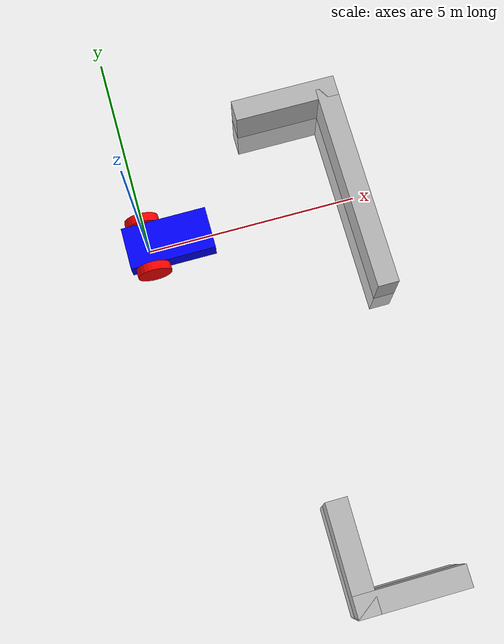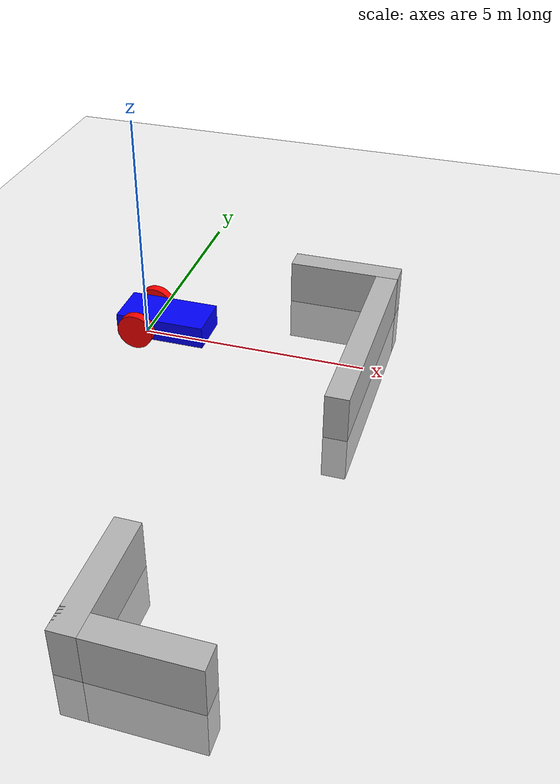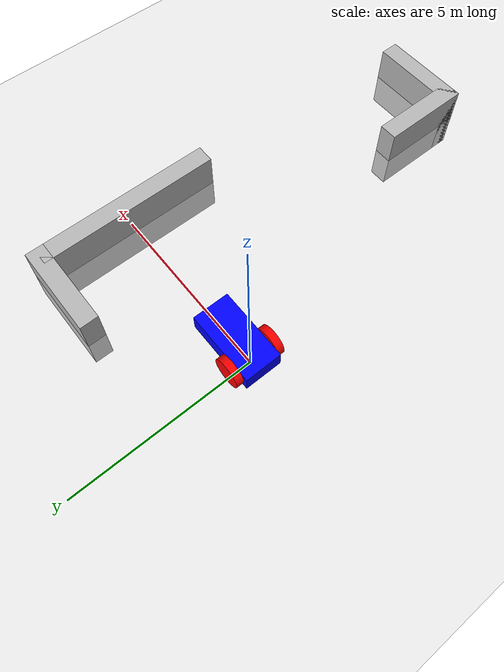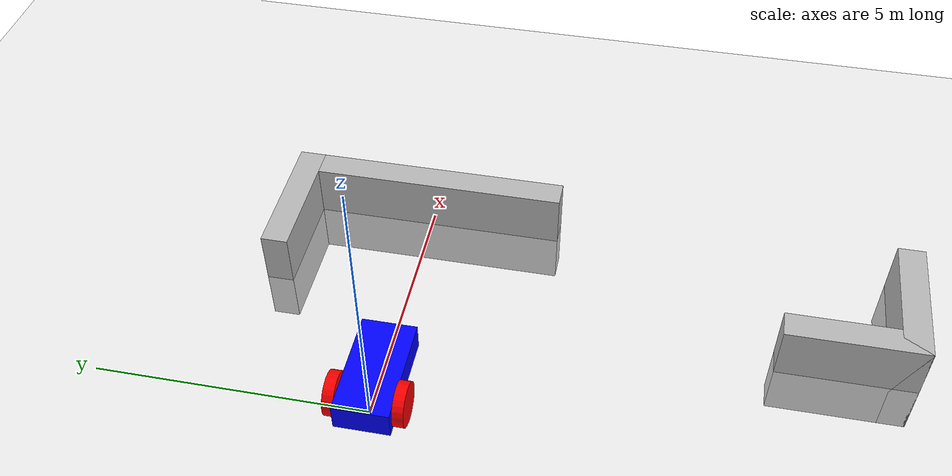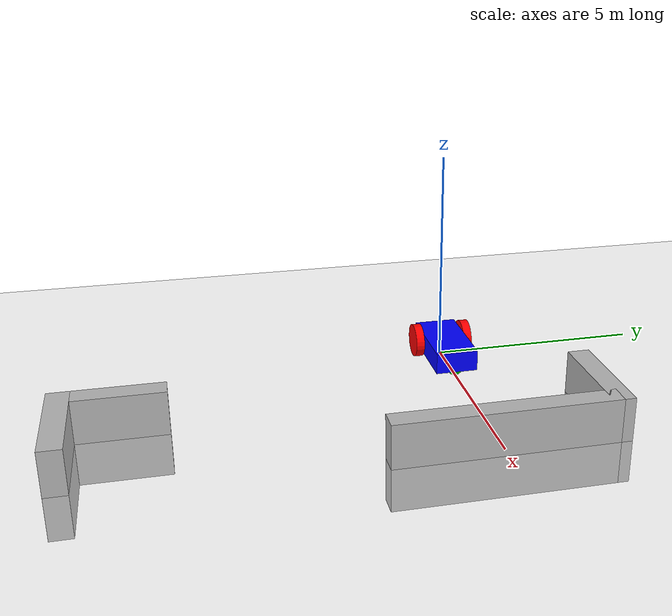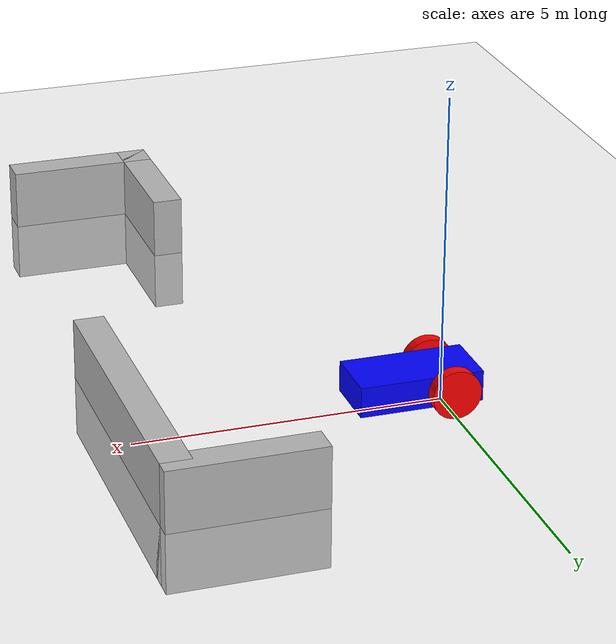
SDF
<?xml version="1.0" ?>
<sdf version="1.8">
    <world name="car_world">
        <physics name="1ms" type="ignored">
            <max_step_size>0.001</max_step_size>
            <real_time_factor>1.0</real_time_factor>
        </physics>
        <plugin
            filename="libignition-gazebo-physics-system.so"
            name="ignition::gazebo::systems::Physics">
        </plugin>
        <plugin
            filename="libignition-gazebo-user-commands-system.so"
            name="ignition::gazebo::systems::UserCommands">
        </plugin>
        <plugin
            filename="libignition-gazebo-scene-broadcaster-system.so"
            name="ignition::gazebo::systems::SceneBroadcaster">
        </plugin>
        <plugin filename="libignition-gazebo-contact-system.so"
                name="ignition::gazebo::systems::Contact">
        </plugin>
        <plugin
            filename="libignition-gazebo-sensors-system.so"
            name="ignition::gazebo::systems::Sensors">
            <render_engine>ogre2</render_engine>
        </plugin>

        <light type="directional" name="sun">
            <cast_shadows>true</cast_shadows>
            <pose>0 0 10 0 0 0</pose>
            <diffuse>0.8 0.8 0.8 1</diffuse>
            <specular>0.2 0.2 0.2 1</specular>
            <attenuation>
                <range>1000</range>
                <constant>0.9</constant>
                <linear>0.01</linear>
                <quadratic>0.001</quadratic>
            </attenuation>
            <direction>-0.5 0.1 -0.9</direction>
        </light>

        <model name="ground_plane">
            <static>true</static>
            <link name="link">
                <collision name="collision">
                <geometry>
                    <plane>
                    <normal>0 0 1</normal>
                    </plane>
                </geometry>
                </collision>
                <visual name="visual">
                <geometry>
                    <plane>
                    <normal>0 0 1</normal>
                    <size>100 100</size>
                    </plane>
                </geometry>
                <material>
                    <ambient>0.8 0.8 0.8 1</ambient>
                    <diffuse>0.8 0.8 0.8 1</diffuse>
                    <specular>0.8 0.8 0.8 1</specular>
                </material>
                </visual>
            </link>
        </model>

        <!--Adding walls for our simulation-->
        <model name='wall1'>
        <static>true</static>
        <pose>5 0 0 0 0 0</pose>
        <link name='box'>
            <visual name='visual'>
            <geometry>
                <box>
                <size>0.5 5 2.0</size>
                </box>
            </geometry>
            </visual>
            <collision name='collision'>
                <geometry>
                    <box>
                        <size>0.5 5 2.0</size>
                    </box>
                </geometry>
            </collision>
        </link>
        </model>

        <model name='wall2'>
        <static>true</static>
        <pose>4 2.5 0 0 0 0</pose>
        <link name='box'>
            <visual name='visual'>
            <geometry>
                <box>
                <size>2.5 0.5 2.0</size>
                </box>
            </geometry>
            </visual>
            <collision name='collision'>
                <geometry>
                    <box>
                        <size>2.5 0.5 2.0</size>
                    </box>
                </geometry>
            </collision>
        </link>
        </model>

        <model name='wall3'>
        <static>true</static>
        <pose>2.5 -8 0 0 0 0</pose>
        <link name='box'>
            <visual name='visual'>
            <geometry>
                <box>
                <size>0.5 2.5 2.0</size>
                </box>
            </geometry>
            </visual>
            <collision name='collision'>
                <geometry>
                    <box>
                        <size>0.5 2.5 2.0</size>
                    </box>
                </geometry>
            </collision>
        </link>
        </model>

        <model name='wall4'>
        <static>true</static>
        <pose>3.5 -9 0 0 0 0</pose>
        <link name='box'>
            <visual name='visual'>
            <geometry>
                <box>
                <size>2.5 0.5 2.0</size>
                </box>
            </geometry>
            </visual>
            <collision name='collision'>
                <geometry>
                    <box>
                        <size>2.5 0.5 2.0</size>
                    </box>
                </geometry>
            </collision>
        </link>
        </model>

        <model name='vehicle_blue' canonical_link='chassis'>
            <pose relative_to='world'>0 0 0 0 0 0</pose>
        <link name='chassis'>
            <pose relative_to='__model__'>0.5 0 0.4 0 0 0</pose>
        <inertial> <!--inertial properties of the link mass, inertia matix-->
            <mass>1.14395</mass>
            <inertia>
                <ixx>0.095329</ixx>
                <ixy>0</ixy>
                <ixz>0</ixz>
                <iyy>0.381317</iyy>
                <iyz>0</iyz>
                <izz>0.476646</izz>
            </inertia>
        </inertial>
        <visual name='visual'>
            <geometry>
                <box>
                    <size>2.0 1.0 0.5</size>
                </box>
            </geometry>
            <!--let's add color to our link-->
            <material>
                <ambient>0.0 0.0 1.0 1</ambient>
                <diffuse>0.0 0.0 1.0 1</diffuse>
                <specular>0.0 0.0 1.0 1</specular>
            </material>
        </visual>
        <collision name='collision'>
            <geometry>
                <box>
                    <size>2.0 1.0 0.5</size>
                </box>
            </geometry>
        </collision>
        </link>

        <!--Adding the lidar link-->
        <link name="lidar_link">
        <pose relative_to="chassis">1.0 0 0.5 0 0 0</pose> <!-- 1m in front, 0.5m above ground -->
        <sensor name="front_lidar" type="gpu_lidar">
            <pose>0 0 0 0 0 0</pose>
            <update_rate>10</update_rate>
            <lidar>
            <horizontal>
                <samples>360</samples>
                <resolution>1</resolution>
                <min_angle>-3.14159</min_angle>
                <max_angle>3.14159</max_angle>
            </horizontal>
            <range>
                <min>0.12</min>
                <max>30.0</max>
                <resolution>0.01</resolution>
            </range>
            </lidar>
            <always_on>true</always_on>
            <visualize>true</visualize>
            <topic>/lidar</topic>
        </sensor>
        </link>

        <link name='left_wheel'>
            <pose relative_to="chassis">-0.5 0.6 0 -1.5707 0 0</pose>
            <inertial>
                <mass>1</mass>
                <inertia>
                    <ixx>0.043333</ixx>
                    <ixy>0</ixy>
                    <ixz>0</ixz>
                    <iyy>0.043333</iyy>
                    <iyz>0</iyz>
                    <izz>0.08</izz>
                </inertia>
            </inertial>
            <visual name='visual'>
                <geometry>
                    <cylinder>
                        <radius>0.4</radius>
                        <length>0.2</length>
                    </cylinder>
                </geometry>
                <material>
                    <ambient>1.0 0.0 0.0 1</ambient>
                    <diffuse>1.0 0.0 0.0 1</diffuse>
                    <specular>1.0 0.0 0.0 1</specular>
                </material>
            </visual>
            <collision name='collision'>
                <geometry>
                    <cylinder>
                        <radius>0.4</radius>
                        <length>0.2</length>
                    </cylinder>
                </geometry>
            </collision>
        </link>
        <link name='right_wheel'>
            <pose relative_to="chassis">-0.5 -0.6 0 -1.5707 0 0</pose> <!--angles are in radian-->
            <inertial>
                <mass>1</mass>
                <inertia>
                    <ixx>0.043333</ixx>
                    <ixy>0</ixy>
                    <ixz>0</ixz>
                    <iyy>0.043333</iyy>
                    <iyz>0</iyz>
                    <izz>0.08</izz>
                </inertia>
            </inertial>
            <visual name='visual'>
                <geometry>
                    <cylinder>
                        <radius>0.4</radius>
                        <length>0.2</length>
                    </cylinder>
                </geometry>
                <material>
                    <ambient>1.0 0.0 0.0 1</ambient>
                    <diffuse>1.0 0.0 0.0 1</diffuse>
                    <specular>1.0 0.0 0.0 1</specular>
                </material>
            </visual>
            <collision name='collision'>
                <geometry>
                    <cylinder>
                        <radius>0.4</radius>
                        <length>0.2</length>
                    </cylinder>
                </geometry>
            </collision>
        </link>
        <frame name="caster_frame" attached_to='chassis'>
            <pose>0.8 0 -0.2 0 0 0</pose>
        </frame>
        <!--caster wheel-->
        <link name='caster'>
            <pose relative_to='caster_frame'/>
            <inertial>
                <mass>1</mass>
                <inertia>
                    <ixx>0.016</ixx>
                    <ixy>0</ixy>
                    <ixz>0</ixz>
                    <iyy>0.016</iyy>
                    <iyz>0</iyz>
                    <izz>0.016</izz>
                </inertia>
            </inertial>
            <visual name='visual'>
                <geometry>
                    <sphere>
                        <radius>0.2</radius>
                    </sphere>
                </geometry>
                <material>
                    <ambient>0.0 1 0.0 1</ambient>
                    <diffuse>0.0 1 0.0 1</diffuse>
                    <specular>0.0 1 0.0 1</specular>
                </material>
            </visual>
            <collision name='collision'>
                <geometry>
                    <sphere>
                        <radius>0.2</radius>
                    </sphere>
                </geometry>
            </collision>
        </link>
        <joint name='left_wheel_joint' type='revolute'>
            <pose relative_to='left_wheel'/>
        <parent>chassis</parent>
        <child>left_wheel</child>
            <axis>
                <xyz expressed_in='__model__'>0 1 0</xyz> <!--can be defined as any frame or even arbitrary frames-->
                <limit>
                    <lower>-1.79769e+308</lower>    <!--negative infinity-->
                    <upper>1.79769e+308</upper>     <!--positive infinity-->
                </limit>
            </axis>
        </joint>
        <joint name='right_wheel_joint' type='revolute'>
            <pose relative_to='right_wheel'/>
            <parent>chassis</parent>
            <child>right_wheel</child>
            <axis>
                <xyz expressed_in='__model__'>0 1 0</xyz>
                <limit>
                    <lower>-1.79769e+308</lower>    <!--negative infinity-->
                    <upper>1.79769e+308</upper>     <!--positive infinity-->
                </limit>
            </axis>
        </joint>
        <joint name='caster_wheel' type='ball'>
            <parent>chassis</parent>
            <child>caster</child>
        </joint>
        <plugin
            filename="libignition-gazebo-diff-drive-system.so"
            name="ignition::gazebo::systems::DiffDrive">
            <left_joint>left_wheel_joint</left_joint>
            <right_joint>right_wheel_joint</right_joint>
            <wheel_separation>1.2</wheel_separation>
            <wheel_radius>0.4</wheel_radius>
            <odom_publish_frequency>1</odom_publish_frequency>
            <topic>cmd_vel</topic>
        </plugin>
        </model>
                <!-- Moving Forward-->
        <plugin filename="libignition-gazebo-triggered-publisher-system.so"
                name="ignition::gazebo::systems::TriggeredPublisher">
            <input type="ignition.msgs.Int32" topic="/keyboard/keypress">
                <match field="data">16777235</match>
            </input>
            <output type="ignition.msgs.Twist" topic="/cmd_vel">
                linear: {x: 0.5}, angular: {z: 0.0}
            </output>
        </plugin>
        <!-- Moving Backward-->
        <plugin filename="libignition-gazebo-triggered-publisher-system.so"
                name="ignition::gazebo::systems::TriggeredPublisher">
            <input type="ignition.msgs.Int32" topic="/keyboard/keypress">
                <match field="data">16777237</match>
            </input>
            <output type="ignition.msgs.Twist" topic="/cmd_vel">
                linear: {x: -0.5}, angular: {z: 0.0}
            </output>
        </plugin>
        <!-- turning left-->
        <plugin filename="libignition-gazebo-triggered-publisher-system.so"
                name="ignition::gazebo::systems::TriggeredPublisher">
            <input type="ignition.msgs.Int32" topic="/keyboard/keypress">
                <match field="data">16777234</match>
            </input>
            <output type="ignition.msgs.Twist" topic="/cmd_vel">
                linear: {x: 0.0}, angular: {z: 0.5}
            </output>
        </plugin>
        <!-- turning left-->
        <plugin filename="libignition-gazebo-triggered-publisher-system.so"
                name="ignition::gazebo::systems::TriggeredPublisher">
            <input type="ignition.msgs.Int32" topic="/keyboard/keypress">
                <match field="data">16777236</match>
            </input>
            <output type="ignition.msgs.Twist" topic="/cmd_vel">
                linear: {x: 0.0}, angular: {z: -0.5}
            </output>
        </plugin>
                <!-- Moving Forward fast-->
        <plugin filename="libignition-gazebo-triggered-publisher-system.so"
                name="ignition::gazebo::systems::TriggeredPublisher">
            <input type="ignition.msgs.Int32" topic="/keyboard/keypress">
                <match field="data">87</match>
            </input>
            <output type="ignition.msgs.Twist" topic="/cmd_vel">
                linear: {x: 3.0}, angular: {z: 0.0}
            </output>
        </plugin>
    </world>
</sdf>
